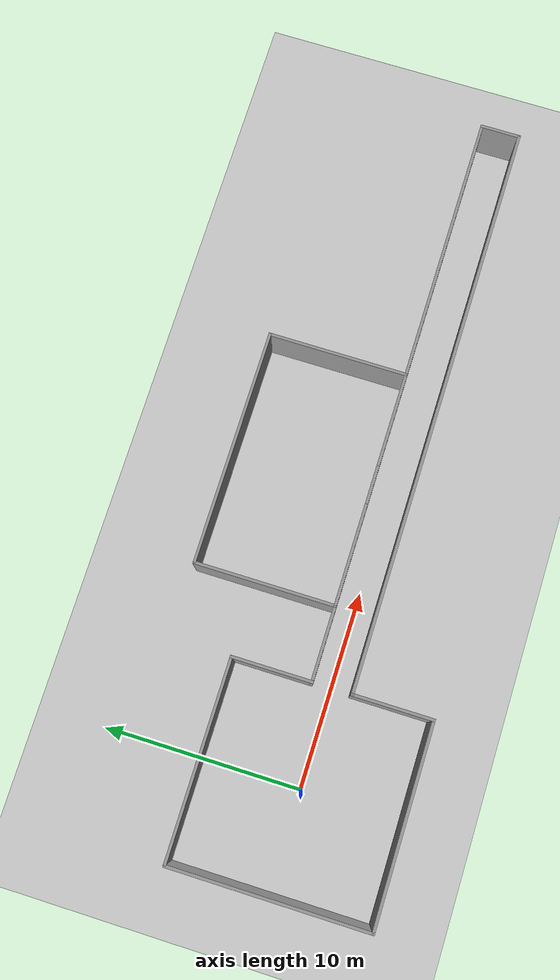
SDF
<sdf version="1.6">
 <world name="default">
  <light name="sun" type="directional">
   <pose>0 0 10 0 -0 0</pose>
   <diffuse>0.8 0.8 0.8 1</diffuse>
   <specular>0.2 0.2 0.2 1</specular>
   <attenuation>
    <range>1000</range>
    <constant>0.9</constant>
    <linear>0.01</linear>
    <quadratic>0.001</quadratic>
   </attenuation>
   <direction>-0.5 0.1 -0.9</direction>
  </light>
  <model name="ground_plane">
   <static>1</static>
   <link name="link">
    <collision name="collision">
     <geometry><plane><normal>0 0 1</normal><size>100 100</size></plane></geometry>
     <surface><friction><ode><mu>100</mu><mu2>50</mu2></ode></friction></surface>
    </collision>
    <visual name="visual">
     <cast_shadows>0</cast_shadows>
     <geometry><plane><normal>0 0 1</normal><size>100 100</size></plane></geometry>
     <material>
      <script><uri>file://media/materials/scripts/gazebo.material</uri><name>Gazebo/Grey</name></script>
     </material>
    </visual>
   </link>
  </model>
  <gravity>0 0 -9.8</gravity>
  <magnetic_field>6e-06 2.3e-05 -4.2e-05</magnetic_field>
  <atmosphere type="adiabatic"/>
  <physics name="default_physics" default="0" type="ode">
   <max_step_size>0.001</max_step_size>
   <real_time_factor>1</real_time_factor>
   <real_time_update_rate>1000</real_time_update_rate>
  </physics>
  <scene><ambient>0.4 0.4 0.4 1</ambient><background>0.7 0.7 0.7 1</background><shadows>1</shadows></scene>
  <spherical_coordinates>
   <surface_model>EARTH_WGS84</surface_model>
   <latitude_deg>0</latitude_deg>
   <longitude_deg>0</longitude_deg>
   <elevation>0</elevation>
   <heading_deg>0</heading_deg>
  </spherical_coordinates>
  <model name="door_corr2">
   <pose>15 1.55241 0 0 -0 0</pose>
   <link name="Wall_1">
    <collision name="Wall_1_Collision">
     <geometry><box><size>4.15 0.15 2.5</size></box></geometry>
     <pose>0 0 1.25 0 -0 0</pose>
    </collision>
    <visual name="Wall_1_Visual">
     <pose>0 0 1.25 0 -0 0</pose>
     <geometry><box><size>4.15 0.15 2.5</size></box></geometry>
     <material>
      <script><uri>file://media/materials/scripts/gazebo.material</uri><name>Gazebo/Grey</name></script>
      <ambient>1 1 1 1</ambient>
     </material>
     <meta><layer>0</layer></meta>
    </visual>
    <pose>-10 1.44759 0 0 -0 1.5708</pose>
   </link>
   <link name="Wall_10">
    <collision name="Wall_10_Collision">
     <geometry><box><size>7.25 0.15 2.5</size></box></geometry>
     <pose>0 0 1.25 0 -0 0</pose>
    </collision>
    <visual name="Wall_10_Visual">
     <pose>0 0 1.25 0 -0 0</pose>
     <geometry><box><size>7.25 0.15 2.5</size></box></geometry>
     <material>
      <script><uri>file://media/materials/scripts/gazebo.material</uri><name>Gazebo/Grey</name></script>
      <ambient>1 1 1 1</ambient>
     </material>
     <meta><layer>0</layer></meta>
    </visual>
    <pose>-6.22325 3.00241 0 0 -0 1.5708</pose>
   </link>
   <link name="Wall_11">
    <collision name="Wall_11_Collision">
     <geometry><box><size>12.25 0.15 2.5</size></box></geometry>
     <pose>0 0 1.25 0 -0 0</pose>
    </collision>
    <visual name="Wall_11_Visual">
     <pose>0 0 1.25 0 -0 0</pose>
     <geometry><box><size>12.25 0.15 2.5</size></box></geometry>
     <material>
      <script><uri>file://media/materials/scripts/gazebo.material</uri><name>Gazebo/Grey</name></script>
      <ambient>1 1 1 1</ambient>
     </material>
     <meta><layer>0</layer></meta>
    </visual>
    <pose>-0.173253 6.55241 0 0 -0 0</pose>
   </link>
   <link name="Wall_12">
    <collision name="Wall_12_Collision">
     <geometry><box><size>7.25 0.15 2.5</size></box></geometry>
     <pose>0 0 1.25 0 -0 0</pose>
    </collision>
    <visual name="Wall_12_Visual">
     <pose>0 0 1.25 0 -0 0</pose>
     <geometry><box><size>7.25 0.15 2.5</size></box></geometry>
     <material>
      <script><uri>file://media/materials/scripts/gazebo.material</uri><name>Gazebo/Grey</name></script>
      <ambient>1 1 1 1</ambient>
     </material>
     <meta><layer>0</layer></meta>
    </visual>
    <pose>5.87675 3.00241 0 0 0 -1.5708</pose>
   </link>
   <link name="Wall_2">
    <collision name="Wall_2_Collision">
     <geometry><box><size>10.15 0.15 2.5</size></box></geometry>
     <pose>0 0 1.25 0 -0 0</pose>
    </collision>
    <visual name="Wall_2_Visual">
     <pose>0 0 1.25 0 -0 0</pose>
     <geometry><box><size>10.15 0.15 2.5</size></box></geometry>
     <material>
      <script><uri>file://media/materials/scripts/gazebo.material</uri><name>Gazebo/Grey</name></script>
      <ambient>1 1 1 1</ambient>
     </material>
     <meta><layer>0</layer></meta>
    </visual>
    <pose>-15 3.44759 0 0 -0 3.14159</pose>
   </link>
   <link name="Wall_3">
    <collision name="Wall_3_Collision">
     <geometry><box><size>10.15 0.15 2.5</size></box></geometry>
     <pose>0 0 1.25 0 -0 0</pose>
    </collision>
    <visual name="Wall_3_Visual">
     <pose>0 0 1.25 0 -0 0</pose>
     <geometry><box><size>10.15 0.15 2.5</size></box></geometry>
     <material>
      <script><uri>file://media/materials/scripts/gazebo.material</uri><name>Gazebo/Grey</name></script>
      <ambient>1 1 1 1</ambient>
     </material>
     <meta><layer>0</layer></meta>
    </visual>
    <pose>-20 -1.55241 0 0 0 -1.5708</pose>
   </link>
   <link name="Wall_4">
    <collision name="Wall_4_Collision">
     <geometry><box><size>10.15 0.15 2.5</size></box></geometry>
     <pose>0 0 1.25 0 -0 0</pose>
    </collision>
    <visual name="Wall_4_Visual">
     <pose>0 0 1.25 0 -0 0</pose>
     <geometry><box><size>10.15 0.15 2.5</size></box></geometry>
     <material>
      <script><uri>file://media/materials/scripts/gazebo.material</uri><name>Gazebo/Grey</name></script>
      <ambient>1 1 1 1</ambient>
     </material>
     <meta><layer>0</layer></meta>
    </visual>
    <pose>-15 -6.55241 0 0 -0 0</pose>
   </link>
   <link name="Wall_5">
    <collision name="Wall_5_Collision">
     <geometry><box><size>4.15 0.15 2.5</size></box></geometry>
     <pose>0 0 1.25 0 -0 0</pose>
    </collision>
    <visual name="Wall_5_Visual">
     <pose>0 0 1.25 0 -0 0</pose>
     <geometry><box><size>4.15 0.15 2.5</size></box></geometry>
     <material>
      <script><uri>file://media/materials/scripts/gazebo.material</uri><name>Gazebo/Grey</name></script>
      <ambient>1 1 1 1</ambient>
     </material>
     <meta><layer>0</layer></meta>
    </visual>
    <pose>-10 -4.55241 0 0 -0 1.5708</pose>
   </link>
   <link name="Wall_6">
    <collision name="Wall_6_Collision">
     <geometry><box><size>30.15 0.15 2.5</size></box></geometry>
     <pose>0 0 1.25 0 -0 0</pose>
    </collision>
    <visual name="Wall_6_Visual">
     <pose>0 0 1.25 0 -0 0</pose>
     <geometry><box><size>30.15 0.15 2.5</size></box></geometry>
     <material>
      <script><uri>file://media/materials/scripts/gazebo.material</uri><name>Gazebo/Grey</name></script>
      <ambient>1 1 1 1</ambient>
     </material>
     <meta><layer>0</layer></meta>
    </visual>
    <pose>5 -2.55241 0 0 -0 0</pose>
   </link>
   <link name="Wall_7">
    <collision name="Wall_7_Collision">
     <geometry><box><size>2.15 0.15 2.5</size></box></geometry>
     <pose>0 0 1.25 0 -0 0</pose>
    </collision>
    <visual name="Wall_7_Visual">
     <pose>0 0 1.25 0 -0 0</pose>
     <geometry><box><size>2.15 0.15 2.5</size></box></geometry>
     <material>
      <script><uri>file://media/materials/scripts/gazebo.material</uri><name>Gazebo/Grey</name></script>
      <ambient>1 1 1 1</ambient>
     </material>
     <meta><layer>0</layer></meta>
    </visual>
    <pose>20 -1.55241 0 0 -0 1.5708</pose>
   </link>
   <link name="Wall_8">
    <pose>5 -0.552411 0 0 -0 3.14159</pose>
    <visual name="Wall_8_Visual_0">
     <pose>-5.5375 0 1.25 0 -0 0</pose>
     <geometry><box><size>19.075 0.15 2.5</size></box></geometry>
     <material>
      <script><uri>file://media/materials/scripts/gazebo.material</uri><name>Gazebo/Grey</name></script>
      <ambient>1 1 1 1</ambient>
     </material>
     <meta><layer>0</layer></meta>
    </visual>
    <collision name="Wall_8_Collision_0">
     <geometry><box><size>19.075 0.15 2.5</size></box></geometry>
     <pose>-5.5375 0 1.25 0 -0 0</pose>
    </collision>
    <visual name="Wall_8_Visual_1">
     <pose>10.5375 0 1.25 0 -0 0</pose>
     <geometry><box><size>9.075 0.15 2.5</size></box></geometry>
     <material>
      <script><uri>file://media/materials/scripts/gazebo.material</uri><name>Gazebo/Grey</name></script>
      <ambient>1 1 1 1</ambient>
     </material>
     <meta><layer>0</layer></meta>
    </visual>
    <collision name="Wall_8_Collision_1">
     <geometry><box><size>9.075 0.15 2.5</size></box></geometry>
     <pose>10.5375 0 1.25 0 -0 0</pose>
    </collision>
    <visual name="Wall_8_Visual_2">
     <pose>5 0 2.25 0 -0 0</pose>
     <geometry><box><size>2 0.15 0.5</size></box></geometry>
     <material>
      <script><uri>file://media/materials/scripts/gazebo.material</uri><name>Gazebo/Grey</name></script>
      <ambient>1 1 1 1</ambient>
     </material>
     <meta><layer>0</layer></meta>
    </visual>
    <collision name="Wall_8_Collision_2">
     <geometry><box><size>2 0.15 0.5</size></box></geometry>
     <pose>5 0 2.25 0 -0 0</pose>
    </collision>
   </link>
   <static>1</static>
  </model>
  <model name="unit_box2">
   <link name="link">
    <inertial>
     <mass>1</mass>
     <inertia>
      <ixx>0.166667</ixx>
      <ixy>0</ixy>
      <ixz>0</ixz>
      <iyy>0.166667</iyy>
      <iyz>0</iyz>
      <izz>0.166667</izz>
     </inertia>
    </inertial>
    <visual name="visual">
     <geometry><box><size>2 0.15 2</size></box></geometry>
     <material>
      <script><name>Gazebo/Grey</name><uri>file://media/materials/scripts/gazebo.material</uri></script>
      <shader type="pixel"><normal_map>__default__</normal_map></shader>
      <ambient>0.3 0.3 0.3 1</ambient>
      <diffuse>0.7 0.7 0.7 1</diffuse>
      <specular>0.01 0.01 0.01 1</specular>
      <emissive>0 0 0 1</emissive>
     </material>
    </visual>
    <collision name="collision">
     <geometry><box><size>2 0.15 2</size></box></geometry>
     <surface>
      <friction>
       <ode><mu>1</mu><mu2>1</mu2><fdir1>0 0 0</fdir1><slip1>0</slip1><slip2>0</slip2></ode>
       <torsional>
        <coefficient>1</coefficient>
        <patch_radius>0</patch_radius>
        <surface_radius>0</surface_radius>
        <use_patch_radius>1</use_patch_radius>
        <ode><slip>0</slip></ode>
       </torsional>
      </friction>
      <bounce><restitution_coefficient>0</restitution_coefficient><threshold>1e+06</threshold></bounce>
      <contact>
       <collide_without_contact>0</collide_without_contact>
       <collide_without_contact_bitmask>1</collide_without_contact_bitmask>
       <collide_bitmask>1</collide_bitmask>
       <ode>
        <soft_cfm>0</soft_cfm>
        <soft_erp>0.2</soft_erp>
        <kp>1e+13</kp>
        <kd>1</kd>
        <max_vel>0.01</max_vel>
        <min_depth>0</min_depth>
       </ode>
       <bullet>
        <split_impulse>1</split_impulse>
        <split_impulse_penetration_threshold>-0.01</split_impulse_penetration_threshold>
        <soft_cfm>0</soft_cfm>
        <soft_erp>0.2</soft_erp>
        <kp>1e+13</kp>
        <kd>1</kd>
       </bullet>
      </contact>
     </surface>
    </collision>
   </link>
   <static>1</static>
   <pose>15 1 1 -1e-05 0 0</pose>
  </model>
 </world>
</sdf>
